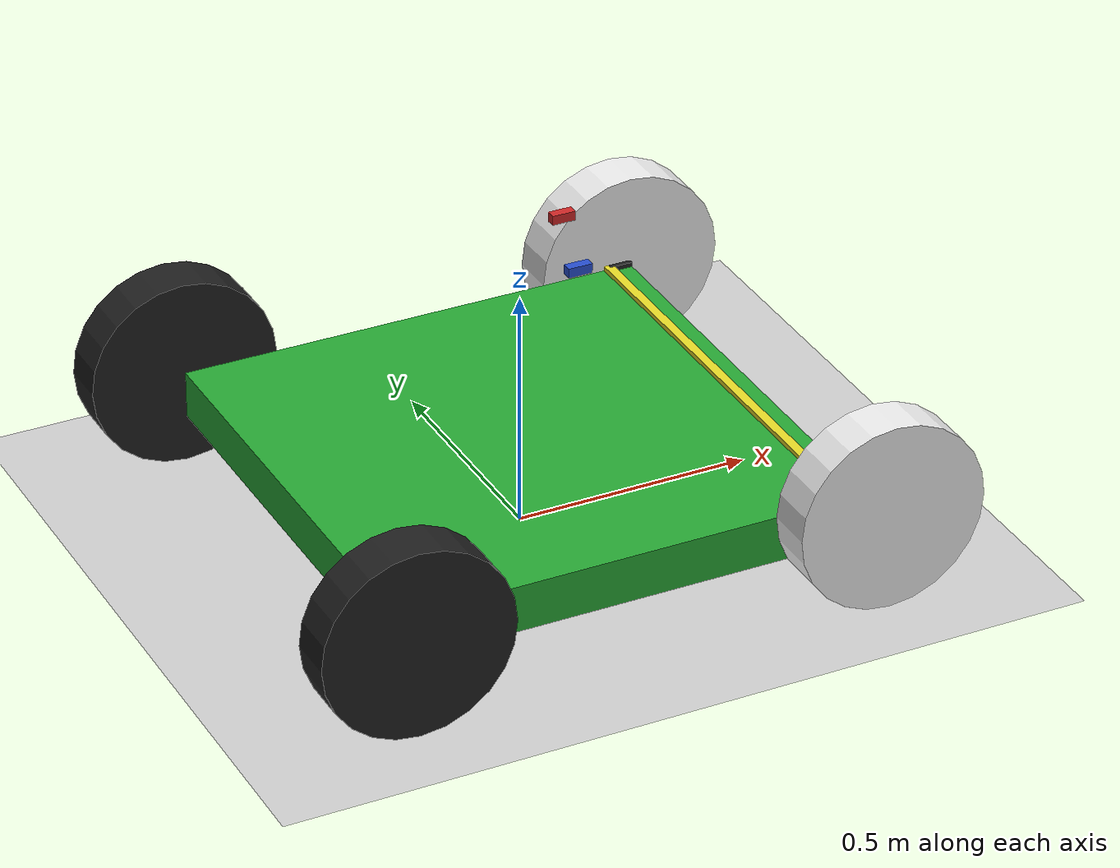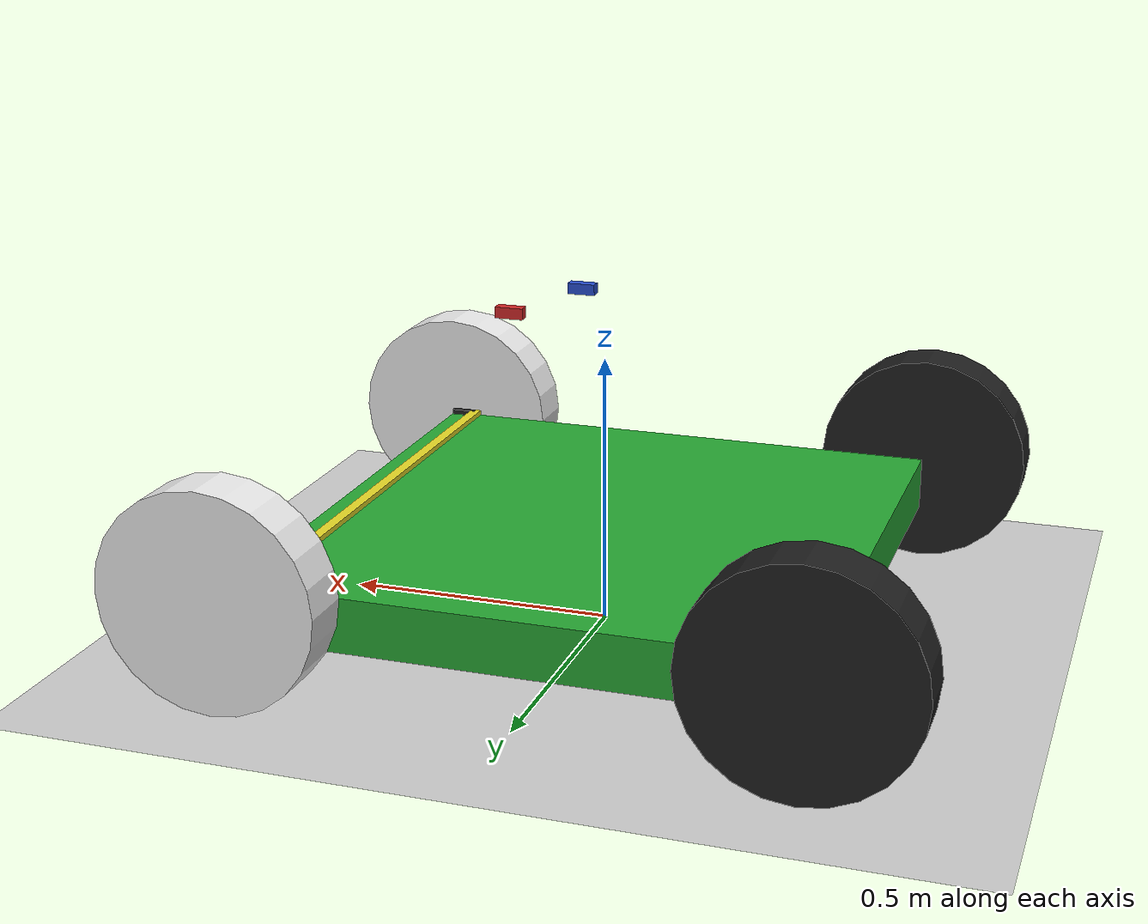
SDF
<?xml version="1.0" ?>
<sdf version="1.4">
  <world name="default">
    <physics type="ode">
      <gravity>0 0 -9.8</gravity>
      <max_step_size>0.001</max_step_size>
      <real_time_factor>10.0</real_time_factor>
      <real_time_update_rate>10000</real_time_update_rate>
      <ode>
        <solver>
          <type>quick</type>
          <iters>50</iters>
          <sor>1.3</sor>
        </solver>
        <constraints>
          <cfm>0.0</cfm>
          <erp>0.2</erp>
          <contact_max_correcting_vel>100.0</contact_max_correcting_vel>
          <contact_surface_layer>0.0</contact_surface_layer>
        </constraints>
      </ode>
      <max_step_size>0.001</max_step_size>
    </physics>

    <!-- 25.5kg total mass -->
    <model name="test_model">
    <pose>0 0 0.7 0 0 0</pose>
    <link name="link">
      <inertial>
        <inertia>
          <ixx>1</ixx>
          <ixy>0</ixy>
          <ixz>0</ixz>
          <iyy>1</iyy>
          <iyz>0</iyz>
          <izz>1</izz>
        </inertia>
        <mass>21.0</mass>
      </inertial>
      <collision name="collision">
        <pose>0 0 0 0 0 0</pose>
        <geometry>
          <box>
            <size>1 1 0.1</size>
          </box>
        </geometry>
        <surface>
          <friction>
            <ode>
              <mu>1</mu>
              <mu2>1</mu2>
            </ode>
          </friction>
          <contact>
            <ode>
              <max_vel>100</max_vel>
            </ode>
          </contact>
        </surface>
      </collision>
      <visual name="visual">
        <pose>0 0 -0.55 0 0 0</pose>
        <geometry>
          <box>
            <size>1 1 0.1</size>
          </box>
        </geometry>
        <material>
        	<script>
        	  <uri>file://media/materials/scripts/gazebo.material</uri>
        	  <name>Gazebo/Green</name>
        	</script>
        </material>
      </visual>

    </link>
    <link name="bar_1">
      <pose>0.45 0 -0.5 0 0 0</pose>
      <inertial>
        <inertia>
          <ixx>0.001</ixx>
          <ixy>0</ixy>
          <ixz>0</ixz>
          <iyy>0.001</iyy>
          <iyz>0</iyz>
          <izz>0.001</izz>
        </inertia>
        <mass>0.1</mass>
      </inertial>
      <collision name="collision">
        <geometry>
          <box>
            <size>0.06 1.0 0.02</size>
          </box>
        </geometry>
        <surface>
          <friction>
            <ode>
              <mu>1</mu>
              <mu2>1</mu2>
            </ode>
          </friction>
          <contact>
            <ode>
              <max_vel>100</max_vel>
            </ode>
          </contact>
        </surface>
      </collision>
      <visual name="visual">
        <geometry>
          <box>
            <size>0.02 1.0 0.02</size>
          </box>
        </geometry>
        <material>
          <script>
        	  <uri>file://media/materials/scripts/gazebo.material</uri>
        	  <name>Gazebo/Yellow</name>
        	</script>
        </material>
      </visual>
    </link>
    <joint name="bar_12_joint" type="revolute">
      <parent>bar_2</parent>
      <child>bar_1</child>
      <pose>0 0.5 0 0 0 0</pose>
      <axis>
        <xyz>0 0 1</xyz>
      </axis>
    </joint>
    <joint name="bar_13_joint" type="revolute">
      <parent>bar_3</parent>
      <child>bar_1</child>
      <pose>0 -0.5 0 0 0 0</pose>
      <axis>
        <xyz>0 0 1</xyz>
      </axis>
    </joint>
    <link name="bar_2">
      <pose>0.5 0.5 -0.5 0 0 0</pose>
      <inertial>
        <inertia>
          <ixx>0.001</ixx>
          <ixy>0</ixy>
          <ixz>0</ixz>
          <iyy>0.001</iyy>
          <iyz>0</iyz>
          <izz>0.001</izz>
        </inertia>
        <mass>0.1</mass>
      </inertial>
      <collision name="collision">
        <pose>-0.025 0 0 0 0 0</pose>
        <geometry>
          <box>
            <size>0.08 0.05 0.05</size>
          </box>
        </geometry>
        <surface>
          <friction>
            <ode>
              <mu>1</mu>
              <mu2>1</mu2>
            </ode>
          </friction>
          <contact>
            <ode>
              <max_vel>100</max_vel>
            </ode>
          </contact>
        </surface>
      </collision>
      <visual name="visual">
        <pose>-0.025 0 0 0 0 0</pose>
        <geometry>
          <box>
            <size>0.05 0.02 0.02</size>
          </box>
        </geometry>
        <material>
          <script>
        	  <uri>file://media/materials/scripts/gazebo.material</uri>
        	  <name>Gazebo/Black</name>
        	</script>
        </material>
      </visual>
    </link>
    <joint name="bar_2_joint" type="revolute">
      <parent>link</parent>
      <child>bar_2</child>
      <pose>0 0 0 0 0 0</pose>
      <axis>
        <xyz>0 0 1</xyz>
      </axis>
    </joint>
    <link name="bar_3">
      <pose>0.5 -0.5 -0.5 0 0 0</pose>
      <inertial>
        <inertia>
          <ixx>0.001</ixx>
          <ixy>0</ixy>
          <ixz>0</ixz>
          <iyy>0.001</iyy>
          <iyz>0</iyz>
          <izz>0.001</izz>
        </inertia>
        <mass>0.1</mass>
      </inertial>
      <collision name="collision">
        <pose>-0.025 0 0 0 0 0</pose>
        <geometry>
          <box>
            <size>0.05 0.02 0.02</size>
          </box>
        </geometry>
        <surface>
          <friction>
            <ode>
              <mu>1</mu>
              <mu2>1</mu2>
            </ode>
          </friction>
          <contact>
            <ode>
              <max_vel>100</max_vel>
            </ode>
          </contact>
        </surface>
      </collision>
      <visual name="visual">
        <pose>-0.025 0 0 0 0 0</pose>
        <geometry>
          <box>
            <size>0.05 0.02 0.02</size>
          </box>
        </geometry>
        <material>
          <script>
        	  <uri>file://media/materials/scripts/gazebo.material</uri>
        	  <name>Gazebo/Black</name>
        	</script>
        </material>
      </visual>
    </link>
    <joint name="bar_3_joint" type="revolute">
      <parent>link</parent>
      <child>bar_3</child>
      <pose>0 0 0 0 0 0</pose>
      <axis>
        <xyz>0 0 1</xyz>
      </axis>
    </joint>
    <link name="wheel_1">
      <pose>0.5 0.55 -0.5 1.57079633 0 0</pose>
      <inertial>
        <inertia>
          <ixx>0.01</ixx>
          <ixy>0</ixy>
          <ixz>0</ixz>
          <iyy>0.01</iyy>
          <iyz>0</iyz>
          <izz>0.01</izz>
        </inertia>
        <mass>1.0</mass>
      </inertial>
      <collision name="collision">
        <geometry>
          <cylinder>
            <radius>0.2</radius>
            <length>0.1</length>
          </cylinder>
        </geometry>
        <surface>
          <friction>
            <ode>
              <fdir1>1 0 0</fdir1>
              <mu>1</mu>
              <mu2>1</mu2>
            </ode>
          </friction>
          <contact>
            <ode>
              <max_vel>100</max_vel>
            </ode>
          </contact>
        </surface>
      </collision>
      <visual name="visual">
        <geometry>
          <cylinder>
            <radius>0.2</radius>
            <length>0.1</length>
          </cylinder>
        </geometry>
        <material>
          <script>
        	  <uri>file://media/materials/scripts/gazebo.material</uri>
        	  <name>Gazebo/White</name>
        	</script>>
        </material>
      </visual>
    </link>
    <joint name="wheel_1_joint" type="revolute">
      <parent>bar_2</parent>
      <child>wheel_1</child>
      <pose>0 0 0 0 0 0</pose>
      <axis>
        <xyz>0 1 0</xyz>
      </axis>
    </joint>
    <link name="wheel_2">
      <pose>0.5 -0.55 -0.5 1.57079633 0 0</pose>
      <inertial>
        <inertia>
          <ixx>0.01</ixx>
          <ixy>0</ixy>
          <ixz>0</ixz>
          <iyy>0.01</iyy>
          <iyz>0</iyz>
          <izz>0.01</izz>
        </inertia>
        <mass>1.0</mass>
      </inertial>
      <collision name="collision">
        <geometry>
          <cylinder>
            <radius>0.2</radius>
            <length>0.1</length>
          </cylinder>
        </geometry>
        <surface>
          <friction>
            <ode>
              <fdir1>1 0 0</fdir1>
              <mu>1</mu>
              <mu2>1</mu2>
            </ode>
          </friction>
          <contact>
            <ode>
              <max_vel>100</max_vel>
            </ode>
          </contact>
        </surface>
      </collision>
      <visual name="visual">
        <geometry>
          <cylinder>
            <radius>0.2</radius>
            <length>0.1</length>
          </cylinder>
        </geometry>
        <material>
          <script>
        	  <uri>file://media/materials/scripts/gazebo.material</uri>
        	  <name>Gazebo/White</name>
        	</script>
        </material>
      </visual>
    </link>
    <joint name="wheel_2_joint" type="revolute">
      <parent>bar_3</parent>
      <child>wheel_2</child>
      <pose>0 0 0 0 0 0</pose>
      <axis>
        <xyz>0 1 0</xyz>
      </axis>
    </joint>
    <link name="wheel_3">
      <pose>-0.5 0.55 -0.5 1.57079633 0 0</pose>
      <inertial>
        <inertia>
          <ixx>0.01</ixx>
          <ixy>0</ixy>
          <ixz>0</ixz>
          <iyy>0.01</iyy>
          <iyz>0</iyz>
          <izz>0.01</izz>
        </inertia>
        <mass>1.0</mass>
      </inertial>
      <collision name="collision">
        <geometry>
          <cylinder>
            <radius>0.2</radius>
            <length>0.1</length>
          </cylinder>
        </geometry>
        <surface>
          <friction>
            <ode>
              <fdir1>1 0 0</fdir1>
              <mu>1</mu>
              <mu2>1</mu2>
            </ode>
          </friction>
          <contact>
            <ode>
              <max_vel>100</max_vel>
            </ode>
          </contact>
        </surface>
      </collision>
      <visual name="visual">
        <geometry>
          <cylinder>
            <radius>0.2</radius>
            <length>0.1</length>
          </cylinder>
        </geometry>
        <material>
          <script>
        	  <uri>file://media/materials/scripts/gazebo.material</uri>
        	  <name>Gazebo/Black</name>
        	</script>
        </material>
      </visual>
    </link>
    <joint name="wheel_3_joint" type="revolute">
      <parent>link</parent>
      <child>wheel_3</child>
      <pose>0 0 0 0 0 0</pose>
      <axis>
        <dynamics>
          <damping>0.0</damping>
          <friction>0.0</friction>
        </dynamics>
        <xyz>0 1 0</xyz>
      </axis>
    </joint>
    <link name="wheel_4">
      <pose>-0.5 -0.55 -0.5 1.57079633 0 0</pose>
      <inertial>
        <inertia>
          <ixx>0.01</ixx>
          <ixy>0</ixy>
          <ixz>0</ixz>
          <iyy>0.01</iyy>
          <iyz>0</iyz>
          <izz>0.01</izz>
        </inertia>
        <mass>1.0</mass>
      </inertial>
      <collision name="collision">
        <geometry>
          <cylinder>
            <radius>0.2</radius>
            <length>0.1</length>
          </cylinder>
        </geometry>
        <surface>
          <friction>
            <ode>
              <fdir1>1 0 0</fdir1>
              <mu>1</mu>
              <mu2>1</mu2>
            </ode>
          </friction>
          <contact>
            <ode>
              <max_vel>100</max_vel>
            </ode>
          </contact>
        </surface>
      </collision>
      <visual name="visual">
        <geometry>
          <cylinder>
            <radius>0.2</radius>
            <length>0.1</length>
          </cylinder>
        </geometry>
        <material>
          <script>
        	  <uri>file://media/materials/scripts/gazebo.material</uri>
        	  <name>Gazebo/Black</name>
        	</script>
        </material>
      </visual>
    </link>
    <joint name="wheel_4_joint" type="revolute">
      <parent>link</parent>
      <child>wheel_4</child>
      <pose>0 0 0 0 0 0</pose>
      <axis>
        <dynamics>
          <damping>0.0</damping>
          <friction>0.0</friction>
        </dynamics>
        <xyz>0 1 0</xyz>
      </axis>
    </joint>
    <!--Input brake_pedal, gas_pedal-->
    <link name="gas_pedal">
      <pose>0.1 -0.1 -0.1 0 0 0</pose>
      <inertial>
        <inertia>
          <ixx>0.001</ixx>
          <ixy>0</ixy>
          <ixz>0</ixz>
          <iyy>0.001</iyy>
          <iyz>0</iyz>
          <izz>0.001</izz>
        </inertia>
        <mass>0.1</mass>
      </inertial>
      <collision name="collision">
        <pose>0.04 0 0 0 0 0</pose>
        <geometry>
          <box>
            <size>0.05 0.02 0.02</size>
          </box>
        </geometry>
        <surface>
          <friction>
            <ode>
              <mu>1</mu>
              <mu2>1</mu2>
            </ode>
          </friction>
          <contact>
            <ode>
              <max_vel>100</max_vel>
            </ode>
          </contact>
        </surface>
      </collision>
      <visual name="visual">
        <pose>-0.025 0 0 0 0 0</pose>
        <geometry>
          <box>
            <size>0.05 0.02 0.02</size>
          </box>
        </geometry>
        <material>
          <script>
        	  <uri>file://media/materials/scripts/gazebo.material</uri>
        	  <name>Gazebo/Blue</name>
        	</script>
        </material>
      </visual>
    </link>
    <joint type="prismatic" name="gas_joint">
      <parent>link</parent>
      <child>gas_pedal</child>
      <axis>
        <xyz>1 0 0</xyz>
        <limit><lower>0</lower><upper>0.2</upper></limit>
      </axis>
    </joint>

    <link name="brake_pedal">
      <pose>0.1 0.1 -0.1 0 0 0</pose>
      <inertial>
        <inertia>
          <ixx>0.001</ixx>
          <ixy>0</ixy>
          <ixz>0</ixz>
          <iyy>0.001</iyy>
          <iyz>0</iyz>
          <izz>0.001</izz>
        </inertia>
        <mass>0.1</mass>
      </inertial>
      <collision name="collision">
        <pose>0.04 0 0 0 0 0</pose>
        <geometry>
          <box>
            <size>0.05 0.02 0.02</size>
          </box>
        </geometry>
        <surface>
          <friction>
            <ode>
              <mu>1</mu>
              <mu2>1</mu2>
            </ode>
          </friction>
          <contact>
            <ode>
              <max_vel>100</max_vel>
            </ode>
          </contact>
        </surface>
      </collision>
      <visual name="visual">
        <pose>0.04 0 0 0 0 0</pose>
        <geometry>
          <box>
            <size>0.05 0.02 0.02</size>
          </box>
        </geometry>
        <material>
          <script>
        	  <uri>file://media/materials/scripts/gazebo.material</uri>
        	  <name>Gazebo/Red</name>
        	</script>
        </material>
      </visual>
    </link>
    <joint type="prismatic" name="brake_joint">
      <parent>link</parent>
      <child>brake_pedal</child>
      <axis>
        <xyz>1 0 0</xyz>
        <limit><lower>0</lower><upper>0.2</upper></limit>
      </axis>
    </joint>

    <plugin name="cart_test_plugin" filename="libCartDemoPlugin.so">
        <steer>bar_2_joint</steer>
        <steer_pid>10 0.1 0.5</steer_pid>
        <steer_ilim>-10 10</steer_ilim>
        <steer_pos>0.0</steer_pos>
        <!-- steer -->
        <steer_vel>0</steer_vel>
        <!-- not used -->
        <steer_eff>100.0</steer_eff>
        <!-- max pos pid effort -->
        <right>wheel_3_joint</right>
        <right_pid>0.1 0.0 0.001</right_pid>
        <right_ilim>-.1 .1</right_ilim>
        <right_pos>0</right_pos>
        <!-- final position pid -->
        <right_vel>0</right_vel>
        <!-- final velocity pid -->
        <right_eff>0.1</right_eff>
        <!-- drive torque -->
        <left>wheel_4_joint</left>
        <left_pid>0.1 0.0 0.001</left_pid>
        <left_ilim>-.1 .1</left_ilim>
        <left_pos>0</left_pos>
        <!-- final position pid -->
        <left_vel>0</left_vel>
        <!-- final velocity pid -->
        <left_eff>0.1</left_eff>
        <!-- drive torque -->
        <!-- Joint which controls the gas -->
     	  <gas>gas_joint</gas>
     	  <gas_pid>12 2 0</gas_pid>
        <gas_ilim>-3 3</gas_ilim>
     	  <!-- Joint which controls the gas -->
        <brake>brake_joint</brake>
        <brake_pid>-10.129 -1.02 0</brake_pid>
        <brake_ilim>-3 .3</brake_ilim>
      	<!-- Power is multiplied by "gas" to determine force applied to wheels -->
      	<front_power>10</front_power>
        <rear_power>10</rear_power>
        <!-- The angle range the front tires can turn for steering, in radians -->
      <tire_angle_range>0.5</tire_angle_range>
      <!-- Maximum speed for the car in meters/second -->
      <max_speed>10</max_speed>
      <!-- Factor for the down-force applied as the car travels faster -->
      <!-- A larger number increases the down force -->
      <aero_load>0.1</aero_load>
      </plugin>
  </model>
    <light type="directional" name="sun">
      <pose>0 0 10 0 0 0</pose>
      <diffuse>.8 .8 .8 1</diffuse>
      <specular>.1 .1 .1 1</specular>
      <attenuation>
        <range>10</range>
        <linear>0.01</linear>
        <constant>0.8</constant>
        <quadratic>0.0</quadratic>
      </attenuation>
      <direction>0 .5 -.5</direction>
      <cast_shadows>true</cast_shadows>
    </light>
  <model name="ground_plane">
    <static>true</static>
    <link name="link">
      <collision name="collision">
        <geometry>
          <plane>
            <normal>0 0 1</normal>
            <size>500 500</size>
          </plane>
        </geometry>
        <surface>
          <friction>
            <ode>
              <mu>100</mu>
              <mu2>50</mu2>
            </ode>
          </friction>
        </surface>
      </collision>
      <visual name="visual">
        <cast_shadows>false</cast_shadows>
        <geometry>
          <plane>
            <normal>0 0 1</normal>
            <size>500 500</size>
          </plane>
        </geometry>
        <material>
          <script>
            <uri>file://media/materials/scripts/gazebo.material</uri>
            <name>Gazebo/Grey</name>
          </script>
        </material>
      </visual>
    </link>
  </model>
  </world>
</sdf>
